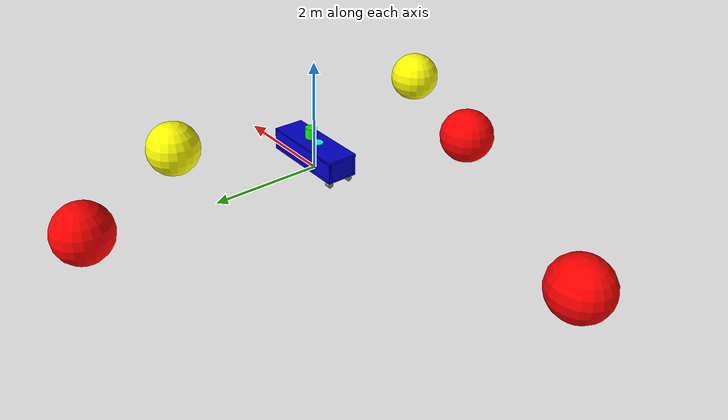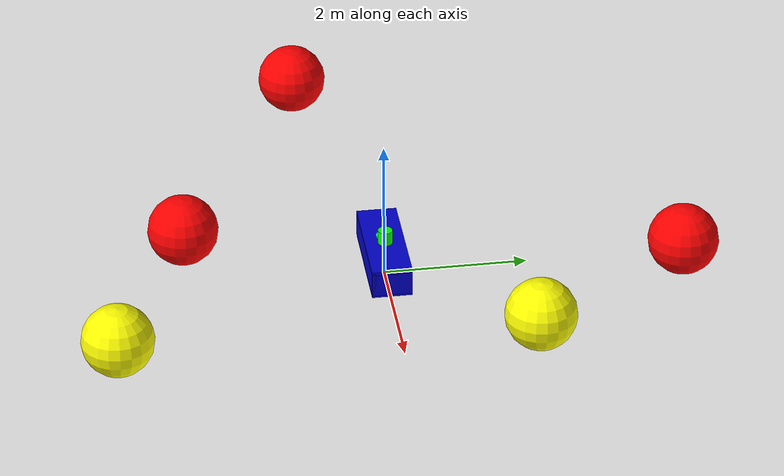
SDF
<sdf version='1.10'>
  <world name='empty'>
    <physics name='1ms' type='ignored'>
      <max_step_size>0.001</max_step_size>
      <real_time_factor>1</real_time_factor>
      <real_time_update_rate>1000</real_time_update_rate>
    </physics>

    <!-- Core plugins -->
    <plugin name='gz::sim::systems::Physics' filename='gz-sim-physics-system'/>
    <plugin name='gz::sim::systems::UserCommands' filename='gz-sim-user-commands-system'/>
    <plugin name='gz::sim::systems::SceneBroadcaster' filename='gz-sim-scene-broadcaster-system'/>
    <plugin name='gz::sim::systems::Contact' filename='gz-sim-contact-system'/>
	<plugin filename="gz-sim-buoyancy-system" name="gz::sim::systems::Buoyancy">
	  <!-- graded buoyancy: water below z=0, air above -->
	  <graded_buoyancy>
	    <default_density>1000</default_density> <!-- water -->
	    <density_change>
	      <above_depth>0</above_depth>
	      <density>1</density> <!-- air -->
	    </density_change>
	  </graded_buoyancy>
	</plugin>
    <plugin
      filename="gz-sim-sensors-system"
      name="gz::sim::systems::Sensors">
      <render_engine>ogre2</render_engine>
    </plugin>
    <plugin filename="gz-sim-imu-system"
        name="gz::sim::systems::Imu">
    </plugin>

    <gravity>0 0 -9.8</gravity>
    <atmosphere type='adiabatic'/>

    <scene>
      <ambient>0.4 0.4 0.4 1</ambient>
      <background>0.7 0.7 0.7 1</background>
      <shadows>true</shadows>
    </scene>

    <!-- Roboboat -->
    <model name="roboboat">
      <pose>0 0 0.15 0 0 0</pose>
      <link name="hull">
        <inertial>
          <mass>25</mass>
          <inertia>
            <ixx>20</ixx>
            <iyy>20</iyy>
            <izz>40</izz>
          </inertia>
        </inertial>
        <collision name="hull_collision">
          <geometry>
            <box>
              <size>1.6 0.5588 0.05</size>
            </box>
          </geometry>
        </collision>
        <visual name="hull_visual">
          <geometry>
            <box>
              <size>1.6 0.5588 0.05</size>
            </box>
          </geometry>
          <material>
            <ambient>0 0 0.8 1</ambient>
            <diffuse>0 0 0.8 1</diffuse>
            <specular>0.2 0.2 0.2 1</specular>
          </material>
        </visual>

        <collision name="hull_deck">
            <pose>0 0 0.354 0 0 0</pose>
          <geometry>
            <box>
              <size>1.6 0.5588 0.05</size>
            </box>
          </geometry>
        </collision>
        <visual name="hull_deck_visual">
          <pose>0 0 0.354 0 0 0</pose>
          <geometry>
            <box>
              <size>1.6 0.5588 0.05</size>
            </box>
          </geometry>
          <material>
            <ambient>0 0 0.8 1</ambient>
            <diffuse>0 0 0.8 1</diffuse>
            <specular>0.2 0.2 0.2 1</specular>
          </material>
        </visual>

        <collision name="hull_front">
            <pose>-0.775 0 0.179 0 0 0</pose>
          <geometry>
            <box>
              <size>0.05 0.5588 0.354</size>
            </box>
          </geometry>
        </collision>
        <visual name="hull_front_visual">
          <pose>-0.775 0 0.179 0 0 0</pose>
          <geometry>
            <box>
              <size>0.05 0.5588 0.354</size>
            </box>
          </geometry>
          <material>
            <ambient>0 0 0.8 1</ambient>
            <diffuse>0 0 0.8 1</diffuse>
            <specular>0.2 0.2 0.2 1</specular>
          </material>
        </visual>

        <collision name="hull_back">
            <pose>0.775 0 0.179 0 0 0</pose>
          <geometry>
            <box>
              <size>0.05 0.5588 0.354</size>
            </box>
          </geometry>
        </collision>
        <visual name="hull_back_visual">
          <pose>0.775 0 0.179 0 0 0</pose>
          <geometry>
            <box>
              <size>0.05 0.5588 0.354</size>
            </box>
          </geometry>
          <material>
            <ambient>0 0 0.8 1</ambient>
            <diffuse>0 0 0.8 1</diffuse>
            <specular>0.2 0.2 0.2 1</specular>
          </material>
        </visual>

        <collision name="hull_side1">
            <pose>0 -0.2544 0.179 0 0 0</pose>
          <geometry>
            <box>
              <size>1.6 0.05 0.354</size>
            </box>
          </geometry>
        </collision>
        <visual name="hull_side1_visual">
          <pose>0 -0.2544 0.179 0 0 0</pose>
          <geometry>
            <box>
              <size>1.6 0.05 0.354</size>
            </box>
          </geometry>
          <material>
            <ambient>0 0 0.8 1</ambient>
            <diffuse>0 0 0.8 1</diffuse>
            <specular>0.2 0.2 0.2 1</specular>
          </material>
        </visual>

        <collision name="hull_side2">
            <pose>0 0.2544 0.179 0 0 0</pose>
          <geometry>
            <box>
              <size>1.6 0.05 0.354</size>
            </box>
          </geometry>
        </collision>
        <visual name="hull_side2_visual">
          <pose>0 0.2544 0.179 0 0 0</pose>
          <geometry>
            <box>
              <size>1.6 0.05 0.354</size>
            </box>
          </geometry>
          <material>
            <ambient>0 0 0.8 1</ambient>
            <diffuse>0 0 0.8 1</diffuse>
            <specular>0.2 0.2 0.2 1</specular>
          </material>
        </visual>
      </link>
      <link name='lidar_link'>
      	<pose>0.1 0 0.504 0 0 0</pose>
        <inertial>
          <mass>5</mass>
          <inertia>
            <ixx>1</ixx>
            <iyy>1</iyy>
            <izz>1</izz>
          </inertia>
        </inertial>
        <collision name='lidar_collision'>
          <geometry>
            <cylinder>
              <radius>0.1</radius>
              <length>0.2</length>
            </cylinder>
          </geometry>
        </collision>
        <visual name='lidar_visual'>
          <geometry>
            <cylinder>
              <radius>0.1</radius>
              <length>0.2</length>
            </cylinder>
          </geometry>
          <material>
            <ambient>0.3 0.3 0.3 1</ambient>
            <diffuse>0 1 0 1</diffuse>
            <specular>1 1 1 1</specular>
          </material>
        </visual>
        <sensor name='gpu_lidar' type='gpu_lidar'>"
	    <pose>0 0 0 0 0 0</pose>
	    <topic>/lidar</topic>
	    <update_rate>10</update_rate>
	    <lidar>
		<scan>
		    <horizontal>
		        <samples>450</samples>
		        <resolution>1</resolution>
		        <min_angle>-3.141952</min_angle>
		        <max_angle>3.141952</max_angle>
		    </horizontal>
		    <vertical>
		        <samples>32</samples>
		        <resolution>1</resolution>
		        <min_angle>-0.0927</min_angle>
		        <max_angle>0.3927</max_angle>
		    </vertical>
		</scan>
		<range>
		    <min>0.08</min>
		    <max>10.0</max>
		    <resolution>0.01</resolution>
		</range>
	    </lidar>
	    <always_on>1</always_on>
	    <visualize>true</visualize>
			</sensor>
			  </link>
		<link name ='imu_link'>
			<pose>-0.1 0 0.3 0 0 0</pose>
			<inertial>
			  <mass>5</mass>
			  <inertia>
				<ixx>1</ixx>
				<iyy>1</iyy>
				<izz>1</izz>
			  </inertia>
			</inertial>
			<collision name='imu_collision'>
			  <geometry>
				<cylinder>
				  <radius>0.1</radius>
				  <length>0.2</length>
				</cylinder>
			  </geometry>
			</collision>
			<visual name='imu_visual'>
			  <geometry>
				<cylinder>
				  <radius>0.1</radius>
				  <length>0.2</length>
				</cylinder>
			  </geometry>
			  <material>
				<ambient>0.3 0.3 0.3 1</ambient>
				<diffuse>0 1 1 1</diffuse>
				<specular>1 1 1 1</specular>
			  </material>
			</visual>
		  <sensor name="imu_sensor" type="imu">
		  	<pose>0 0 0 0 0 0</pose>
		  	<topic>/imu</topic>
			<always_on>1</always_on>
			<update_rate>50</update_rate>
			<imu>
			  <enable_orientation>0</enable_orientation>
			  <angular_velocity>
			    <x>
			      <noise type="gaussian">
				<mean>0</mean>
				<stddev>0.009</stddev>
				<bias_mean>0.00075</bias_mean>
				<bias_stddev>0.005</bias_stddev>
				<dynamic_bias_stddev>0.00002</dynamic_bias_stddev>
				<dynamic_bias_correlation_time>400.0</dynamic_bias_correlation_time>
				<precision>0.00025</precision>
			      </noise>
			    </x>
			    <y>
			      <noise type="gaussian">
				<mean>0</mean>
				<stddev>0.009</stddev>
				<bias_mean>0.00075</bias_mean>
				<bias_stddev>0.005</bias_stddev>
				<dynamic_bias_stddev>0.00002</dynamic_bias_stddev>
				<dynamic_bias_correlation_time>400.0</dynamic_bias_correlation_time>
				<precision>0.00025</precision>
			      </noise>
			    </y>
			    <z>
			      <noise type="gaussian">
				<mean>0</mean>
				<stddev>0.009</stddev>
				<bias_mean>0.00075</bias_mean>
				<bias_stddev>0.005</bias_stddev>
				<dynamic_bias_stddev>0.00002</dynamic_bias_stddev>
				<dynamic_bias_correlation_time>400.0</dynamic_bias_correlation_time>
				<precision>0.00025</precision>
			      </noise>
			    </z>
			  </angular_velocity>
			  <linear_acceleration>
			    <x>
			      <noise type="gaussian">
				<mean>0</mean>
				<stddev>0.021</stddev>
				<bias_mean>0.05</bias_mean>
				<bias_stddev>0.0075</bias_stddev>
				<dynamic_bias_stddev>0.000375</dynamic_bias_stddev>
				<dynamic_bias_correlation_time>175.0</dynamic_bias_correlation_time>
				<precision>0.005</precision>
			      </noise>
			    </x>
			    <y>
			      <noise type="gaussian">
				<mean>0</mean>
				<stddev>0.021</stddev>
				<bias_mean>0.05</bias_mean>
				<bias_stddev>0.0075</bias_stddev>
				<dynamic_bias_stddev>0.000375</dynamic_bias_stddev>
				<dynamic_bias_correlation_time>175.0</dynamic_bias_correlation_time>
				<precision>0.005</precision>
			      </noise>
			    </y>
			    <z>
			      <noise type="gaussian">
				<mean>0</mean>
				<stddev>0.021</stddev>
				<bias_mean>0.05</bias_mean>
				<bias_stddev>0.0075</bias_stddev>
				<dynamic_bias_stddev>0.000375</dynamic_bias_stddev>
				<dynamic_bias_correlation_time>175.0</dynamic_bias_correlation_time>
				<precision>0.005</precision>
			      </noise>
			    </z>
			  </linear_acceleration>
			</imu>
		      </sensor>
		</link>
      <joint name='lidar_joint' type='fixed'>
	<parent>hull</parent>
	<child>lidar_link</child>
      </joint>
      <joint name='imu_joint' type='fixed'>
	<parent>hull</parent>
	<child>imu_link</child>
      </joint>
      <!-- Left thruster -->
<link name="left_thruster">
  <pose>-0.7 -0.2 -0.1 0 1.57 0</pose>
  <inertial>
    <mass>0</mass>
    <inertia>
      <ixx>0.1</ixx>
      <iyy>0.1</iyy>
      <izz>0.1</izz>
    </inertia>
  </inertial>
  <visual name="left_thruster_visual">
    <geometry>
      <cylinder>
        <radius>0.05</radius>
        <length>0.1</length>
      </cylinder>
    </geometry>
    <material>
      <ambient>0.2 0.2 0.2 1</ambient>
      <diffuse>0.5 0.5 0.5 1</diffuse>
    </material>
  </visual>
</link>

<!-- Right thruster -->
<link name="right_thruster">
  <pose>-0.7 0.2 -0.1 0 1.57 0</pose>
  <inertial>
    <mass>0</mass>
    <inertia>
      <ixx>0.1</ixx>
      <iyy>0.1</iyy>
      <izz>0.1</izz>
    </inertia>
  </inertial>
  <visual name="right_thruster_visual">
    <geometry>
      <cylinder>
        <radius>0.05</radius>
        <length>0.1</length>
      </cylinder>
    </geometry>
    <material>
      <ambient>0.2 0.2 0.2 1</ambient>
      <diffuse>0.5 0.5 0.5 1</diffuse>
    </material>
  </visual>
</link>

<!-- Thruster joints -->
<joint name="left_thruster_joint" type="revolute">
  <parent>hull</parent>
  <child>left_thruster</child>
  <axis>
    <xyz>1 0 0</xyz>
  </axis>
</joint>

<joint name="right_thruster_joint" type="revolute">
  <parent>hull</parent>
  <child>right_thruster</child>
  <axis>
    <xyz>1 0 0</xyz>
  </axis>
</joint>
    <!-- Left thruster plugin -->
<plugin filename="gz-sim-thruster-system" name="gz::sim::systems::Thruster">
  <joint_name>left_thruster_joint</joint_name>
  <thrust_coefficient>0.02</thrust_coefficient>
  <fluid_density>1000</fluid_density>
  <deadband>0.0</deadband>
  <propeller_diameter>0.1</propeller_diameter>
  <topic>/model/roboboat/joint/left_thruster_joint/cmd_thrust</topic>
</plugin>

<!-- Right thruster plugin -->
<plugin filename="gz-sim-thruster-system" name="gz::sim::systems::Thruster">
  <joint_name>right_thruster_joint</joint_name>
  <thrust_coefficient>0.02</thrust_coefficient>
  <fluid_density>1000</fluid_density>
  <propeller_diameter>0.1</propeller_diameter>
  <topic>/model/roboboat/joint/right_thruster_joint/cmd_thrust</topic>
</plugin>
    </model>

    <!-- Buoy -->
    <model name='buoy_0'>
      <pose>0.14 4.2 0.25 0 0 0</pose>
      <link name='buoy_link'>
        <inertial>
          <mass>50</mass>
          <inertia>
            <ixx>2</ixx>
            <iyy>2</iyy>
            <izz>2</izz>
          </inertia>
        </inertial>
        <collision name='buoy_collision'>
          <geometry>
            <sphere>
              <radius>0.5</radius>
            </sphere>
          </geometry>
        </collision>
        <visual name='buoy_visual'>
          <geometry>
            <sphere>
              <radius>0.5</radius>
            </sphere>
          </geometry>
          <material>
            <ambient>0.3 0.3 0.3 1</ambient>
            <diffuse>1 0 0 1</diffuse>
            <specular>1 1 1 1</specular>
          </material>
        </visual>
      </link>
    </model>

    <!-- Buoy -->
    <model name='buoy_1'>
      <pose>-1.1 -2.7 0.25 0 0 0</pose>
      <link name='buoy_link'>
        <inertial>
          <mass>50</mass>
          <inertia>
            <ixx>2</ixx>
            <iyy>2</iyy>
            <izz>2</izz>
          </inertia>
        </inertial>
        <collision name='buoy_collision'>
          <geometry>
            <sphere>
              <radius>0.5</radius>
            </sphere>
          </geometry>
        </collision>
        <visual name='buoy_visual'>
          <geometry>
            <sphere>
              <radius>0.5</radius>
            </sphere>
          </geometry>
          <material>
            <ambient>0.3 0.3 0.3 1</ambient>
            <diffuse>1 0 0 1</diffuse>
            <specular>1 1 1 1</specular>
          </material>
        </visual>
      </link>
    </model>

    <!-- Buoy -->
    <model name='buoy_2'>
      <pose>1.5 -3.8 0.25 0 0 0</pose>
      <link name='buoy_link'>
        <inertial>
          <mass>50</mass>
          <inertia>
            <ixx>2</ixx>
            <iyy>2</iyy>
            <izz>2</izz>
          </inertia>
        </inertial>
        <collision name='buoy_collision'>
          <geometry>
            <sphere>
              <radius>0.5</radius>
            </sphere>
          </geometry>
        </collision>
        <visual name='buoy_visual'>
          <geometry>
            <sphere>
              <radius>0.5</radius>
            </sphere>
          </geometry>
          <material>
            <ambient>0.3 0.3 0.3 1</ambient>
            <diffuse>1 1 0 1</diffuse>
            <specular>1 1 1 1</specular>
          </material>
        </visual>
      </link>
    </model>

    <!-- Buoy -->
    <model name='buoy_3'>
      <pose>-5.1 -0.7 0.25 0 0 0</pose>
      <link name='buoy_link'>
        <inertial>
          <mass>50</mass>
          <inertia>
            <ixx>2</ixx>
            <iyy>2</iyy>
            <izz>2</izz>
          </inertia>
        </inertial>
        <collision name='buoy_collision'>
          <geometry>
            <sphere>
              <radius>0.5</radius>
            </sphere>
          </geometry>
        </collision>
        <visual name='buoy_visual'>
          <geometry>
            <sphere>
              <radius>0.5</radius>
            </sphere>
          </geometry>
          <material>
            <ambient>0.3 0.3 0.3 1</ambient>
            <diffuse>1 0 0 1</diffuse>
            <specular>1 1 1 1</specular>
          </material>
        </visual>
      </link>
    </model>

    <!-- Buoy -->
    <model name='buoy_4'>
      <pose>1.7 1.9 0.25 0 0 0</pose>
      <link name='buoy_link'>
        <inertial>
          <mass>50</mass>
          <inertia>
            <ixx>2</ixx>
            <iyy>2</iyy>
            <izz>2</izz>
          </inertia>
        </inertial>
        <collision name='buoy_collision'>
          <geometry>
            <sphere>
              <radius>0.5</radius>
            </sphere>
          </geometry>
        </collision>
        <visual name='buoy_visual'>
          <geometry>
            <sphere>
              <radius>0.5</radius>
            </sphere>
          </geometry>
          <material>
            <ambient>0.3 0.3 0.3 1</ambient>
            <diffuse>1 1 0 1</diffuse>
            <specular>1 1 1 1</specular>
          </material>
        </visual>
      </link>
    </model>

    <!-- Sun light -->
    <light name='sun' type='directional'>
      <pose>0 0 10 0 0 0</pose>
      <cast_shadows>true</cast_shadows>
      <intensity>1</intensity>
      <direction>-0.5 0.1 -0.9</direction>
      <diffuse>0.8 0.8 0.8 1</diffuse>
      <specular>0.2 0.2 0.2 1</specular>
      <attenuation>
        <range>1000</range>
        <linear>0.01</linear>
        <constant>0.9</constant>
        <quadratic>0.001</quadratic>
      </attenuation>
    </light>
  </world>
</sdf>
